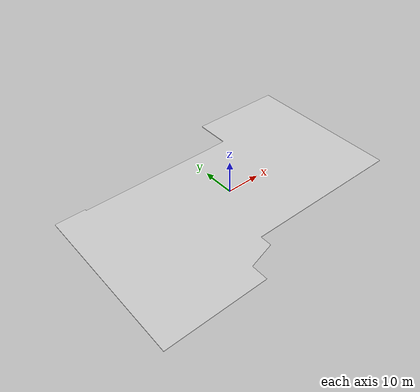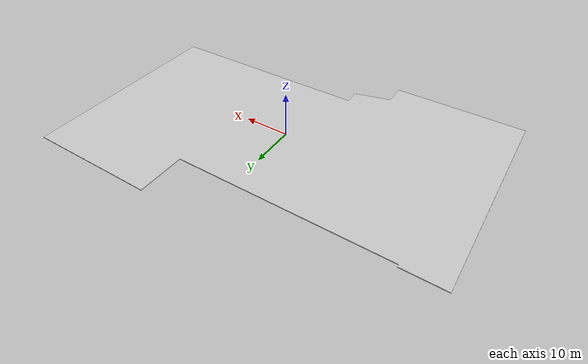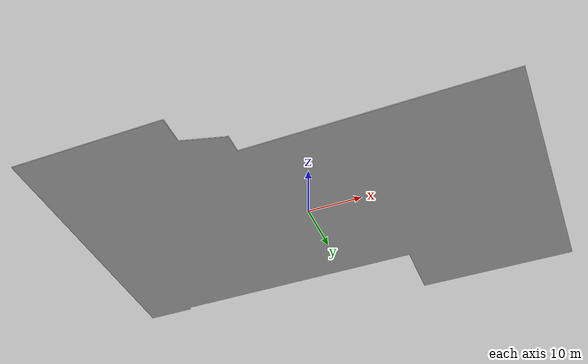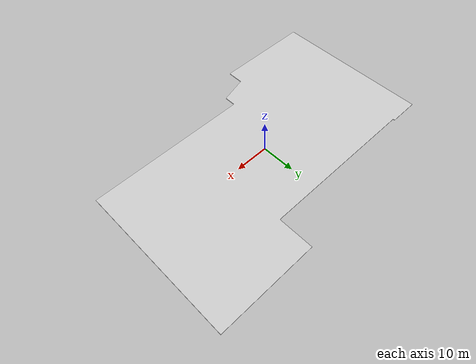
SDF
<?xml version='1.0'?>
<sdf version='1.5'>
  <model name='fourth_floor_floor_textured'>
    <link name='link_3'>
      <pose frame=''>0.01 0.1 0 0 -0 0</pose>

      <visual name='visual'>
        <pose frame=''>0 0 0 0 -0 0</pose>
        <geometry>
          <mesh>
            <uri>model://fourth_floor_floor_textured/meshes/fourth_floor_floor_textured.dae</uri>
            <scale>1 1 1</scale>
          </mesh>
        </geometry>
        <material>
            <uri>model://fourth_floor_floor_textured/materials/scripts</uri>
            <uri>model://fourth_floor_floor_textured/materials/textures</uri>
            <name>floorMatTextured/Diffuse</name>
        </material>
        <cast_shadows>1</cast_shadows>
        <transparency>0</transparency>
      </visual>
    </link>
    <static>1</static>
    <allow_auto_disable>1</allow_auto_disable>
  </model>
</sdf>
